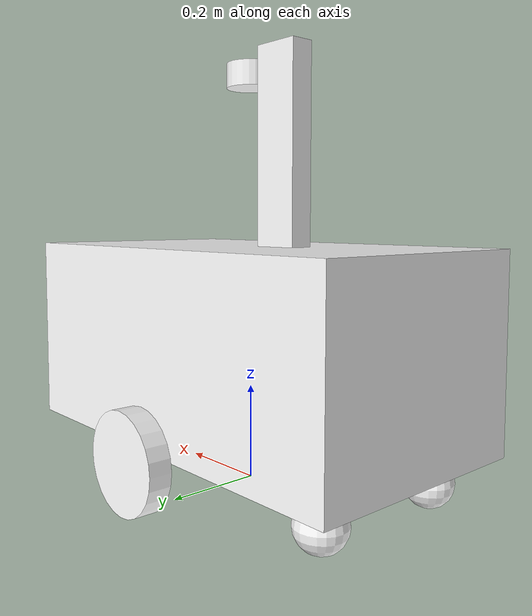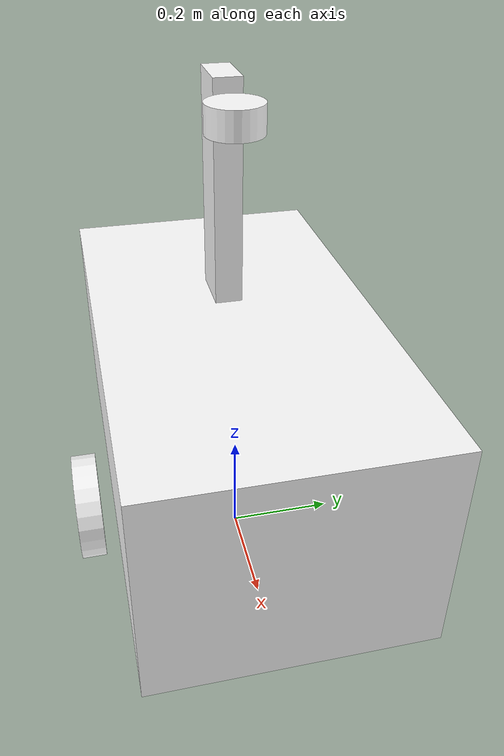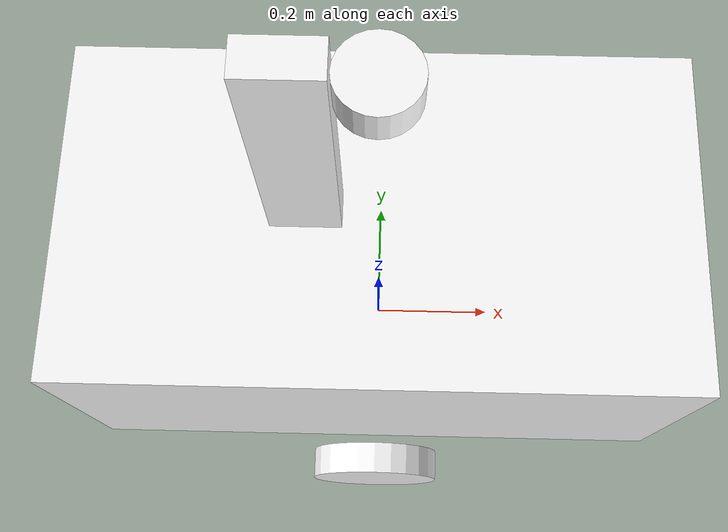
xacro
<?xml version="1.0" encoding="UTF-8"?>
<robot xmlns:xacro="http://www.ros.org/wiki/xacro" name="sugar_robot">
  <xacro:property name="PI" value="3.1415926535897931"/>

  <!-- import gazebo reference -->
  <xacro:include filename="$(find sugar_description)/urdf/sugar_robot.gazebo"/>

  <!-- import livox 3D-lidar model -->
  <xacro:include filename="$(find sugar_description)/urdf/livox.xacro"/>
  <xacro:sensor_livox name="livox" parent="lidar_stand" min_angle="-2.35619" max_angle="2.35619" samples="720">
    <origin xyz="0.1 0.0 0.35" rpy="3.1415926535897931 0 0"/>
  </xacro:sensor_livox>

  <!-- base footprint -->
  <link name="base_footprint"/>

  <!-- base link -->
  <joint name="base_joint" type="fixed">
    <parent link="base_footprint"/>
    <child link="base_link"/>
    <origin xyz="0.0 0.0 0.1" rpy="0 0 0"/>
  </joint>
  <link name="base_link">
    <visual>
      <origin xyz="0.0 0.0 0.2" rpy="0 0 0"/>
      <geometry>
        <box size="0.9 0.5 0.4"/>
      </geometry>
      <material name="white">
        <color rgba="1.0 1.0 1.0 1.0"/>
      </material>
    </visual>
    <collision>
      <origin xyz="0.0 0.0 0.2" rpy="0 0 0"/>
      <geometry>
        <box size="0.9 0.5 0.4"/>
      </geometry>
    </collision>
    <inertial>
      <mass value="27.1"/>
      <origin xyz="-0.1995 0.0 0.19" rpy="0.0 0.0 0.0"/>
      <inertia ixx="0.78032248125" ixy="0.0" ixz="0.0" iyy="0.883913925" iyz="0.0" izz="1.25773640625"/>
    </inertial>
  </link>

  <!-- 3D-lidar stand -->
  <joint name="lidar_stand_joint" type="fixed">
    <parent link="base_link"/>
    <child link="lidar_stand"/>
    <origin xyz="-0.1 0.0 0.4" rpy="0 0 0"/>
  </joint>
  <link name="lidar_stand">
    <visual>
      <origin xyz="0.0 0.0 0.2" rpy="0 0 0"/>
      <geometry>
        <box size="0.1 0.05 0.4"/>
      </geometry>
      <material name="white">
        <color rgba="1.0 1.0 1.0 1.0"/>
      </material>
    </visual>
    <collision>
      <origin xyz="0.0 0.0 0.2" rpy="0 0 0"/>
      <geometry>
        <box size="0.1 0.05 0.4"/>
      </geometry>
    </collision>
  </link>

  <!-- left wheel -->
  <joint name="left_wheel_hinge" type="revolute">
    <parent link="base_link"/>
    <child link="left_wheel"/>
    <origin xyz="0.0 0.3 0.0" rpy="0.0 1.57079632679 1.57079632679"/>
    <axis xyz="0 0 1"/>
    <limit effort="100" velocity="100.0" lower="-5000" upper="5000"/>
  </joint>
  <link name="left_wheel">
    <visual>
      <origin xyz="0.0 0.0 0.0" rpy="0 0 0"/>
      <geometry>
        <cylinder radius="0.1015" length="0.047"/>
      </geometry>
      <material name="white">
        <color rgba="1.0 1.0 1.0 1.0"/>
      </material>
    </visual>
    <collision>
      <origin xyz="0.0 0.0 0.0" rpy="0 0 0"/>
      <geometry>
        <cylinder radius="0.1015" length="0.047"/>
      </geometry>
    </collision>
    <inertial>
      <mass value="3.4"/>
      <origin xyz="0.0 0.0 0.0" rpy="0.0 1.57079632679 1.57079632679"/>
      <inertia ixx="0.00938279583" ixy="0.0" ixz="0.0" iyy="0.00938279583" iyz="0.0" izz="0.017513825"/>
    </inertial>
  </link>

  <!-- right wheel -->
  <joint name="right_wheel_hinge" type="revolute">
    <parent link="base_link"/>
    <child link="right_wheel"/>
    <origin xyz="0.0 -0.3 0.0" rpy="0.0 1.57079632679 1.57079632679"/>
    <axis xyz="0 0 1"/>
    <limit effort="100" velocity="100.0" lower="-5000" upper="5000"/>
  </joint>
  <link name="right_wheel">
    <visual>
      <origin xyz="0.0 0.0 0.0" rpy="0 0 0"/>
      <geometry>
        <cylinder radius="0.1015" length="0.047"/>
      </geometry>
      <material name="white">
        <color rgba="1.0 1.0 1.0 1.0"/>
      </material>
    </visual>
    <collision>
      <origin xyz="0.0 0.0 0.0" rpy="0 0 0"/>
      <geometry>
        <cylinder radius="0.1015" length="0.047"/>
      </geometry>
    </collision>
    <inertial>
      <mass value="3.4"/>
      <origin xyz="0.0 0.0 0.0" rpy="0.0 1.57079632679 1.57079632679"/>
      <inertia ixx="0.00938279583" ixy="0.0" ixz="0.0" iyy="0.00938279583" iyz="0.0" izz="0.017513825"/>
    </inertial>
  </link>

  <!-- front left caster -->
  <joint name="front_left_caster_hinge" type="fixed">
    <parent link="base_link"/>
    <child link="front_left_caster"/>
    <origin xyz="0.2 0.15 -0.05" rpy="0.0 0.0 0.0"/>
  </joint>
  <link name="front_left_caster">
    <visual>
      <origin xyz="0.0 0.0 0.0" rpy="0.0 0.0 0.0"/>
      <geometry>
        <sphere radius="0.05"/>
      </geometry>
      <material name="white">
        <color rgba="1.0 1.0 1.0 1.0"/>
      </material>
    </visual>
    <collision>
      <origin xyz="0.0 0.0 0.0" rpy="0.0 0.0 0.0"/>
      <geometry>
        <sphere radius="0.05"/>
      </geometry>
    </collision>
  </link>

  <!-- front right caster -->
  <joint name="front_right_caster_hinge" type="fixed">
    <parent link="base_link"/>
    <child link="front_right_caster"/>
    <origin xyz="0.2 -0.15 -0.05" rpy="0.0 0.0 0.0"/>
  </joint>
  <link name="front_right_caster">
    <visual>
      <origin xyz="0.0 0.0 0.0" rpy="0.0 0.0 0.0"/>
      <geometry>
        <sphere radius="0.05"/>
      </geometry>
      <material name="white">
        <color rgba="1.0 1.0 1.0 1.0"/>
      </material>
    </visual>
    <collision>
      <origin xyz="0.0 0.0 0.0" rpy="0.0 0.0 0.0"/>
      <geometry>
        <sphere radius="0.05"/>
      </geometry>
    </collision>
  </link>

  <!-- rear left caster -->
  <joint name="rear_left_caster_hinge" type="fixed">
    <parent link="base_link"/>
    <child link="rear_left_caster"/>
    <origin xyz="-0.35 0.15 -0.05" rpy="0.0 0.0 0.0"/>
  </joint>
  <link name="rear_left_caster">
    <visual>
      <origin xyz="0.0 0.0 0.0" rpy="0.0 0.0 0.0"/>
      <geometry>
        <sphere radius="0.05"/>
      </geometry>
      <material name="white">
        <color rgba="1.0 1.0 1.0 1.0"/>
      </material>
    </visual>
    <collision>
      <origin xyz="0.0 0.0 0.0" rpy="0.0 0.0 0.0"/>
      <geometry>
        <sphere radius="0.05"/>
      </geometry>
    </collision>
  </link>

  <!-- rear right caster -->
  <joint name="rear_right_caster_hinge" type="fixed">
    <parent link="base_link"/>
    <child link="rear_right_caster"/>
    <origin xyz="-0.35 -0.15 -0.05" rpy="0.0 0.0 0.0"/>
  </joint>
  <link name="rear_right_caster">
    <visual>
      <origin xyz="0.0 0.0 0.0" rpy="0.0 0.0 0.0"/>
      <geometry>
        <sphere radius="0.05"/>
      </geometry>
      <material name="white">
        <color rgba="1.0 1.0 1.0 1.0"/>
      </material>
    </visual>
    <collision>
      <origin xyz="0.0 0.0 0.0" rpy="0.0 0.0 0.0"/>
      <geometry>
        <sphere radius="0.05"/>
      </geometry>
    </collision>
  </link>
</robot>

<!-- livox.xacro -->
<robot xmlns:xacro="http://ros.org/wiki/xacro" xmlns:controller="http://playerstage.sourceforge.net/gazebo/xmlschema/#controller" xmlns:interface="http://playerstage.sourceforge.net/gazebo/xmlschema/#interface" name="sensor_livox">
  <xacro:macro name="sensor_livox" params="name parent *origin min_angle max_angle samples">
    <joint name="${name}_joint" type="fixed">
      <xacro:insert_block name="origin"/>
      <parent link="${parent}"/>
      <child link="${name}"/>
    </joint>
    <link name="${name}">
      <visual>
        <origin xyz="0.0 0.0 0.0" rpy="0 0 0"/>
        <geometry>
          <cylinder radius="0.05" length="0.05"/>
        </geometry>
        <material name="white">
          <color rgba="1.0 1.0 1.0 1.0"/>
        </material>
      </visual>
      <collision>
        <origin xyz="0 0 0" rpy="0 0 0"/>
        <geometry>
          <cylinder radius="0.05" length="0.05"/>
        </geometry>
      </collision>
    </link>
    <gazebo reference="${name}">
      <sensor type="ray" name="head_velodyne_sensor">
        <pose>0 0 0 0 0 0</pose>
        <visualize>false</visualize>
        <update_rate>10</update_rate>
        <ray>
          <scan>
            <horizontal>
              <resolution>1</resolution>
              <samples>1875</samples>
              <min_angle>-3.1415926535897931</min_angle>
              <max_angle>3.1415926535897931</max_angle>
            </horizontal>
            <vertical>
              <resolution>1</resolution>
              <samples>16</samples>
              <min_angle>-0.26179938779</min_angle>
              <max_angle>0.26179938779</max_angle>
            </vertical>
          </scan>
          <range>
            <min>0.9</min>
            <max>100</max>
            <resolution>0.001</resolution>
          </range>
          <noise>
            <type>gaussian</type>
            <mean>0.0</mean>
            <stddev>0.0</stddev>
          </noise>
        </ray>
        <plugin name="gazebo_ros_velodyne_controller" filename="libgazebo_ros_velodyne_laser.so">
          <ros>
            <remapping>~/out:=velodyne_points</remapping>
          </ros>
          <frame_name>${name}</frame_name>
          <min_range>0.9</min_range>
          <max_range>100</max_range>
          <gaussian_noise>0.01</gaussian_noise>
        </plugin>
      </sensor>
    </gazebo>
  </xacro:macro>
</robot>
